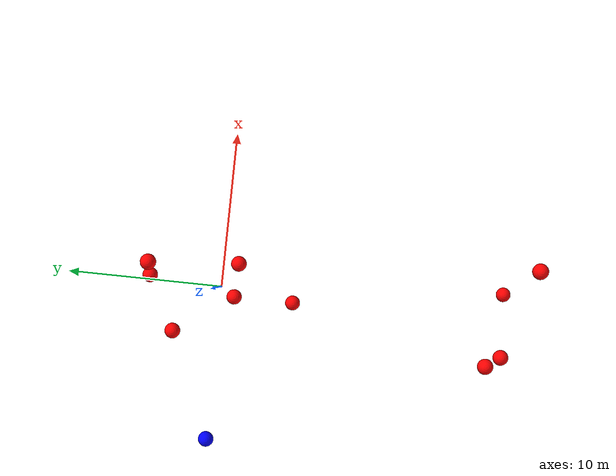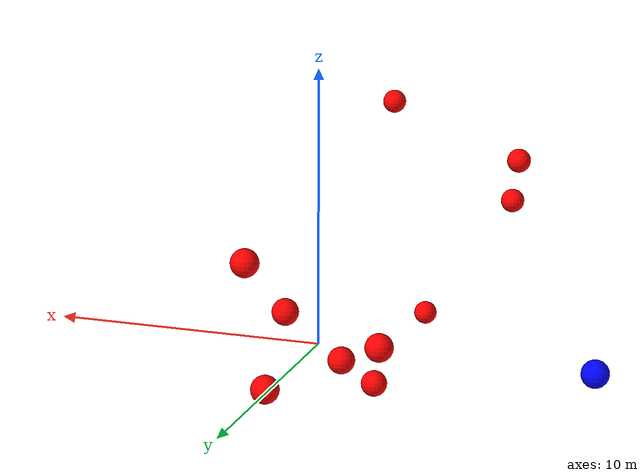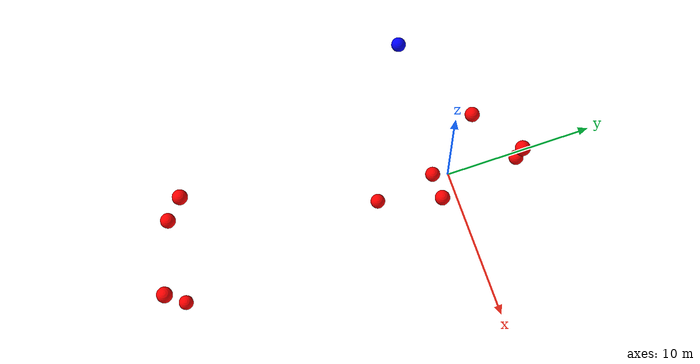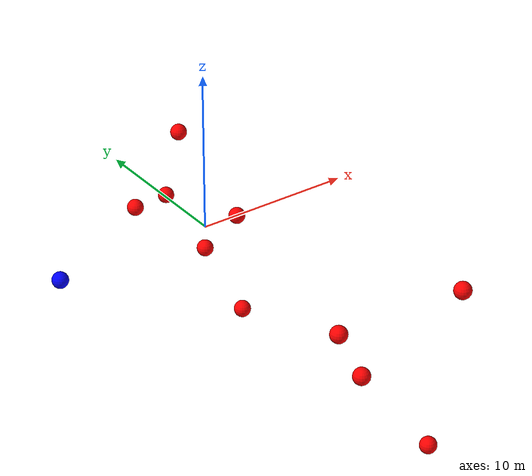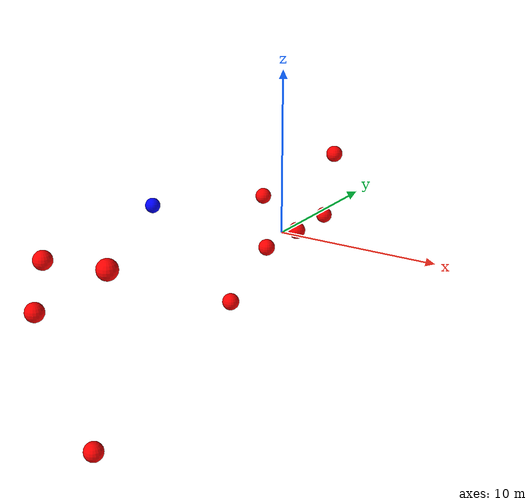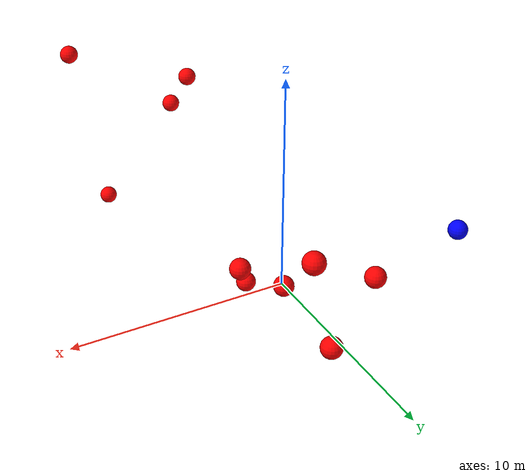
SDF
<?xml version="1.0" ?>
<sdf version="1.8">
    <world name="3d_world">
        <physics name="1ms" type="ode">
            <max_step_size>0.001</max_step_size>
            <real_time_factor>1.0</real_time_factor>
            <real_time_update_rate>1000.0</real_time_update_rate>
        </physics>
        <gravity>0 0 0</gravity>

        <plugin
            filename="gz-sim-physics-system"
            name="gz::sim::v8::systems::Physics">
        </plugin>
        <plugin
            filename="libignition-gazebo-user-commands-system.so"
            name="ignition::gazebo::systems::UserCommands">
        </plugin>
        <plugin
            filename="gz-sim-scene-broadcaster-system"
            name="gz::sim::systems::SceneBroadcaster">
        </plugin>
        <plugin
            filename="gz-sim-sensors-system"
            name="gz::sim::systems::Sensors">
            <render_engine>ogre2</render_engine>
        </plugin>

        <light type="directional" name="sun">
            <cast_shadows>true</cast_shadows>
            <pose>0 0 10 0 0 0</pose>
            <diffuse>0.8 0.8 0.8 1</diffuse>
            <specular>0.2 0.2 0.2 1</specular>
            <attenuation>
                <range>1000</range>
                <constant>0.9</constant>
                <linear>0.01</linear>
                <quadratic>0.001</quadratic>
            </attenuation>
            <direction>-0.5 0.1 -0.9</direction>
        </light>

        <!-- AGENTE -->
        <model name='agente' canonical_link='chassis'>
            <pose relative_to='world'>-10.0 0 0.0 0 0 0</pose>
            <link name='chassis'>
                <pose relative_to='__model__'>0.0 0 0.0 0 0 0</pose>
                <inertial>
                    <mass>1.14395</mass>
                    <inertia>
                        <ixx>0.095329</ixx>
                        <ixy>0</ixy>
                        <ixz>0</ixz>
                        <iyy>0.381317</iyy>
                        <iyz>0</iyz>
                        <izz>0.476646</izz>
                    </inertia>
                </inertial>
                <visual name='visual'>
                    <geometry>
                        <sphere>
                            <radius>0.5</radius>
                        </sphere>
                    </geometry>
                    <material>
                        <ambient>0.0 0.0 1.0 1</ambient>
                        <diffuse>0.0 0.0 1.0 1</diffuse>
                        <specular>0.0 0.0 1.0 1</specular>
                    </material>
                </visual>
                <collision name='collision'>
                    <geometry>
                        <sphere>
                            <radius>0.5</radius>
                        </sphere>
                    </geometry>
                </collision>
                <enable_gravity>false</enable_gravity>
            </link>

            <link name='lidar_link'>
                <pose relative_to='chassis'>0.0 0 0.1 0 0 0</pose>
                <inertial>
                    <mass>0.1</mass>
                    <inertia>
                        <ixx>0.000166667</ixx>
                        <iyy>0.000166667</iyy>
                        <izz>0.000166667</izz>
                    </inertia>
                </inertial>
                <collision name='collision'>
                    <geometry>
                        <cylinder>
                            <radius>0.05</radius>
                            <length>0.1</length>
                        </cylinder>
                    </geometry>
                </collision>
                <visual name='visual'>
                    <geometry>
                        <cylinder>
                            <radius>0.05</radius>
                            <length>0.1</length>
                        </cylinder>
                    </geometry>
                    <material>
                        <ambient>0.0 1.0 0.0 1</ambient>
                        <diffuse>0.0 1.0 0.0 1</diffuse>
                        <specular>0.0 1.0 0.0 1</specular>
                    </material>
                </visual>
                <sensor name="lidar" type="gpu_lidar">
                    <topic>scan</topic>
                    <update_rate>10</update_rate>
                    <lidar>
                        <scan>
                            <horizontal>
                                <samples>5000</samples>
                                <resolution>1</resolution>
                                <min_angle>-3.14159</min_angle>
                                <max_angle>3.14159</max_angle>
                            </horizontal>
                        </scan>
                        <range>
                            <min>0.1</min>
                            <max>10.0</max>
                            <resolution>0.01</resolution>
                        </range>
                    </lidar>
                    <visualize>true</visualize>
                    <always_on>true</always_on>
                    <update_rate>10</update_rate>
                    <pose_frame>lidar</pose_frame>
                </sensor>
                <enable_gravity>false</enable_gravity>
            </link>

            <joint name="lidar_joint" type="fixed">
                <parent>chassis</parent>
                <child>lidar_link</child>
            </joint>

            <plugin
                filename="ignition-gazebo-joint-state-publisher-system"
                name="ignition::gazebo::systems::JointStatePublisher">
            </plugin>
            <plugin
                filename="ignition-gazebo-odometry-publisher-system"
                name="ignition::gazebo::systems::OdometryPublisher">
                <dimensions>3</dimensions>
            </plugin>
            <plugin
                filename="ignition-gazebo-velocity-control-system"
                name="ignition::gazebo::systems::VelocityControl">
                <initial_linear>0.0 0 0</initial_linear>
                <initial_angular>0 0 0.0</initial_angular>
            </plugin>
            <plugin
                filename="libignition-gazebo-pose-publisher-system.so"
                name="ignition::gazebo::systems::PosePublisher">
                <topic>/agente/pose</topic>
                <frame_id>agente</frame_id>
                <update_rate>30</update_rate>
            </plugin>
        </model>

        <!-- OBSTACLE 1 -->
        <model name='obstacle_1' canonical_link='obstacle'>
            <static>false</static>
            <pose relative_to='world'>1.61 -1.00 0.74 0 0 0</pose>
            <link name='obstacle'>
                <pose relative_to='__model__'>0.0 0 0.0 0 0 0</pose>
                <visual name='visual'>
                    <geometry>
                        <sphere>
                            <radius>0.50</radius>
                        </sphere>
                    </geometry>
                    <material>
                        <ambient>1.0 0.0 0.0 1</ambient>
                        <diffuse>1.0 0.0 0.0 1</diffuse>
                        <specular>1.0 0.0 0.0 1</specular>
                    </material>
                </visual>
                <collision name='collision'>
                    <geometry>
                        <sphere>
                            <radius>0.50</radius>
                        </sphere>
                    </geometry>
                </collision>
                <enable_gravity>false</enable_gravity>
            </link>

            <plugin
                filename="ignition-gazebo-velocity-control-system"
                name="ignition::gazebo::systems::VelocityControl">
                <initial_linear>-0.19 0.23 -0.17</initial_linear>
                <initial_angular>0 0 0</initial_angular>
            </plugin>

            <plugin
                filename="ignition-gazebo-odometry-publisher-system"
                name="ignition::gazebo::systems::OdometryPublisher">
                <dimensions>3</dimensions>
            </plugin>
        </model>

        <!-- OBSTACLE 2 -->
        <model name='obstacle_2' canonical_link='obstacle'>
            <static>false</static>
            <pose relative_to='world'>3.02 -19.50 4.80 0 0 0</pose>
            <link name='obstacle'>
                <pose relative_to='__model__'>0.0 0 0.0 0 0 0</pose>
                <visual name='visual'>
                    <geometry>
                        <sphere>
                            <radius>0.50</radius>
                        </sphere>
                    </geometry>
                    <material>
                        <ambient>1.0 0.0 0.0 1</ambient>
                        <diffuse>1.0 0.0 0.0 1</diffuse>
                        <specular>1.0 0.0 0.0 1</specular>
                    </material>
                </visual>
                <collision name='collision'>
                    <geometry>
                        <sphere>
                            <radius>0.50</radius>
                        </sphere>
                    </geometry>
                </collision>
                <enable_gravity>false</enable_gravity>
            </link>

            <plugin
                filename="ignition-gazebo-velocity-control-system"
                name="ignition::gazebo::systems::VelocityControl">
                <initial_linear>-0.37 1.91 -0.47</initial_linear>
                <initial_angular>0 0 0</initial_angular>
            </plugin>

            <plugin
                filename="ignition-gazebo-odometry-publisher-system"
                name="ignition::gazebo::systems::OdometryPublisher">
                <dimensions>3</dimensions>
            </plugin>
        </model>

        <!-- OBSTACLE 3 -->
        <model name='obstacle_3' canonical_link='obstacle'>
            <static>false</static>
            <pose relative_to='world'>0.31 4.75 -0.16 0 0 0</pose>
            <link name='obstacle'>
                <pose relative_to='__model__'>0.0 0 0.0 0 0 0</pose>
                <visual name='visual'>
                    <geometry>
                        <sphere>
                            <radius>0.50</radius>
                        </sphere>
                    </geometry>
                    <material>
                        <ambient>1.0 0.0 0.0 1</ambient>
                        <diffuse>1.0 0.0 0.0 1</diffuse>
                        <specular>1.0 0.0 0.0 1</specular>
                    </material>
                </visual>
                <collision name='collision'>
                    <geometry>
                        <sphere>
                            <radius>0.50</radius>
                        </sphere>
                    </geometry>
                </collision>
                <enable_gravity>false</enable_gravity>
            </link>

            <plugin
                filename="ignition-gazebo-velocity-control-system"
                name="ignition::gazebo::systems::VelocityControl">
                <initial_linear>0.31 -1.01 0.03</initial_linear>
                <initial_angular>0 0 0</initial_angular>
            </plugin>

            <plugin
                filename="ignition-gazebo-odometry-publisher-system"
                name="ignition::gazebo::systems::OdometryPublisher">
                <dimensions>3</dimensions>
            </plugin>
        </model>

        <!-- OBSTACLE 4 -->
        <model name='obstacle_4' canonical_link='obstacle'>
            <static>false</static>
            <pose relative_to='world'>-3.11 2.80 1.08 0 0 0</pose>
            <link name='obstacle'>
                <pose relative_to='__model__'>0.0 0 0.0 0 0 0</pose>
                <visual name='visual'>
                    <geometry>
                        <sphere>
                            <radius>0.50</radius>
                        </sphere>
                    </geometry>
                    <material>
                        <ambient>1.0 0.0 0.0 1</ambient>
                        <diffuse>1.0 0.0 0.0 1</diffuse>
                        <specular>1.0 0.0 0.0 1</specular>
                    </material>
                </visual>
                <collision name='collision'>
                    <geometry>
                        <sphere>
                            <radius>0.50</radius>
                        </sphere>
                    </geometry>
                </collision>
                <enable_gravity>false</enable_gravity>
            </link>

            <plugin
                filename="ignition-gazebo-velocity-control-system"
                name="ignition::gazebo::systems::VelocityControl">
                <initial_linear>1.04 -0.59 -0.23</initial_linear>
                <initial_angular>0 0 0</initial_angular>
            </plugin>

            <plugin
                filename="ignition-gazebo-odometry-publisher-system"
                name="ignition::gazebo::systems::OdometryPublisher">
                <dimensions>3</dimensions>
            </plugin>
        </model>

        <!-- OBSTACLE 5 -->
        <model name='obstacle_5' canonical_link='obstacle'>
            <static>false</static>
            <pose relative_to='world'>-0.59 -0.84 -0.82 0 0 0</pose>
            <link name='obstacle'>
                <pose relative_to='__model__'>0.0 0 0.0 0 0 0</pose>
                <visual name='visual'>
                    <geometry>
                        <sphere>
                            <radius>0.50</radius>
                        </sphere>
                    </geometry>
                    <material>
                        <ambient>1.0 0.0 0.0 1</ambient>
                        <diffuse>1.0 0.0 0.0 1</diffuse>
                        <specular>1.0 0.0 0.0 1</specular>
                    </material>
                </visual>
                <collision name='collision'>
                    <geometry>
                        <sphere>
                            <radius>0.50</radius>
                        </sphere>
                    </geometry>
                </collision>
                <enable_gravity>false</enable_gravity>
            </link>

            <plugin
                filename="ignition-gazebo-velocity-control-system"
                name="ignition::gazebo::systems::VelocityControl">
                <initial_linear>0.45 0.18 0.18</initial_linear>
                <initial_angular>0 0 0</initial_angular>
            </plugin>

            <plugin
                filename="ignition-gazebo-odometry-publisher-system"
                name="ignition::gazebo::systems::OdometryPublisher">
                <dimensions>3</dimensions>
            </plugin>
        </model>

        <!-- OBSTACLE 6 -->
        <model name='obstacle_6' canonical_link='obstacle'>
            <static>false</static>
            <pose relative_to='world'>-2.66 -18.40 1.03 0 0 0</pose>
            <link name='obstacle'>
                <pose relative_to='__model__'>0.0 0 0.0 0 0 0</pose>
                <visual name='visual'>
                    <geometry>
                        <sphere>
                            <radius>0.50</radius>
                        </sphere>
                    </geometry>
                    <material>
                        <ambient>1.0 0.0 0.0 1</ambient>
                        <diffuse>1.0 0.0 0.0 1</diffuse>
                        <specular>1.0 0.0 0.0 1</specular>
                    </material>
                </visual>
                <collision name='collision'>
                    <geometry>
                        <sphere>
                            <radius>0.50</radius>
                        </sphere>
                    </geometry>
                </collision>
                <enable_gravity>false</enable_gravity>
            </link>

            <plugin
                filename="ignition-gazebo-velocity-control-system"
                name="ignition::gazebo::systems::VelocityControl">
                <initial_linear>0.41 1.95 -0.11</initial_linear>
                <initial_angular>0 0 0</initial_angular>
            </plugin>

            <plugin
                filename="ignition-gazebo-odometry-publisher-system"
                name="ignition::gazebo::systems::OdometryPublisher">
                <dimensions>3</dimensions>
            </plugin>
        </model>

        <!-- OBSTACLE 7 -->
        <model name='obstacle_7' canonical_link='obstacle'>
            <static>false</static>
            <pose relative_to='world'>1.42 -19.34 -4.73 0 0 0</pose>
            <link name='obstacle'>
                <pose relative_to='__model__'>0.0 0 0.0 0 0 0</pose>
                <visual name='visual'>
                    <geometry>
                        <sphere>
                            <radius>0.50</radius>
                        </sphere>
                    </geometry>
                    <material>
                        <ambient>1.0 0.0 0.0 1</ambient>
                        <diffuse>1.0 0.0 0.0 1</diffuse>
                        <specular>1.0 0.0 0.0 1</specular>
                    </material>
                </visual>
                <collision name='collision'>
                    <geometry>
                        <sphere>
                            <radius>0.50</radius>
                        </sphere>
                    </geometry>
                </collision>
                <enable_gravity>false</enable_gravity>
            </link>

            <plugin
                filename="ignition-gazebo-velocity-control-system"
                name="ignition::gazebo::systems::VelocityControl">
                <initial_linear>-0.59 1.86 0.45</initial_linear>
                <initial_angular>0 0 0</initial_angular>
            </plugin>

            <plugin
                filename="ignition-gazebo-odometry-publisher-system"
                name="ignition::gazebo::systems::OdometryPublisher">
                <dimensions>3</dimensions>
            </plugin>
        </model>

        <!-- OBSTACLE 8 -->
        <model name='obstacle_8' canonical_link='obstacle'>
            <static>false</static>
            <pose relative_to='world'>1.13 4.43 4.12 0 0 0</pose>
            <link name='obstacle'>
                <pose relative_to='__model__'>0.0 0 0.0 0 0 0</pose>
                <visual name='visual'>
                    <geometry>
                        <sphere>
                            <radius>0.50</radius>
                        </sphere>
                    </geometry>
                    <material>
                        <ambient>1.0 0.0 0.0 1</ambient>
                        <diffuse>1.0 0.0 0.0 1</diffuse>
                        <specular>1.0 0.0 0.0 1</specular>
                    </material>
                </visual>
                <collision name='collision'>
                    <geometry>
                        <sphere>
                            <radius>0.50</radius>
                        </sphere>
                    </geometry>
                </collision>
                <enable_gravity>false</enable_gravity>
            </link>

            <plugin
                filename="ignition-gazebo-velocity-control-system"
                name="ignition::gazebo::systems::VelocityControl">
                <initial_linear>-0.27 -1.10 -1.03</initial_linear>
                <initial_angular>0 0 0</initial_angular>
            </plugin>

            <plugin
                filename="ignition-gazebo-odometry-publisher-system"
                name="ignition::gazebo::systems::OdometryPublisher">
                <dimensions>3</dimensions>
            </plugin>
        </model>

        <!-- OBSTACLE 9 -->
        <model name='obstacle_9' canonical_link='obstacle'>
            <static>false</static>
            <pose relative_to='world'>-0.64 -4.75 -3.00 0 0 0</pose>
            <link name='obstacle'>
                <pose relative_to='__model__'>0.0 0 0.0 0 0 0</pose>
                <visual name='visual'>
                    <geometry>
                        <sphere>
                            <radius>0.50</radius>
                        </sphere>
                    </geometry>
                    <material>
                        <ambient>1.0 0.0 0.0 1</ambient>
                        <diffuse>1.0 0.0 0.0 1</diffuse>
                        <specular>1.0 0.0 0.0 1</specular>
                    </material>
                </visual>
                <collision name='collision'>
                    <geometry>
                        <sphere>
                            <radius>0.50</radius>
                        </sphere>
                    </geometry>
                </collision>
                <enable_gravity>false</enable_gravity>
            </link>

            <plugin
                filename="ignition-gazebo-velocity-control-system"
                name="ignition::gazebo::systems::VelocityControl">
                <initial_linear>-1.04 1.45 0.91</initial_linear>
                <initial_angular>0 0 0</initial_angular>
            </plugin>

            <plugin
                filename="ignition-gazebo-odometry-publisher-system"
                name="ignition::gazebo::systems::OdometryPublisher">
                <dimensions>3</dimensions>
            </plugin>
        </model>

        <!-- OBSTACLE 10 -->
        <model name='obstacle_10' canonical_link='obstacle'>
            <static>false</static>
            <pose relative_to='world'>-3.20 -17.07 3.14 0 0 0</pose>
            <link name='obstacle'>
                <pose relative_to='__model__'>0.0 0 0.0 0 0 0</pose>
                <visual name='visual'>
                    <geometry>
                        <sphere>
                            <radius>0.50</radius>
                        </sphere>
                    </geometry>
                    <material>
                        <ambient>1.0 0.0 0.0 1</ambient>
                        <diffuse>1.0 0.0 0.0 1</diffuse>
                        <specular>1.0 0.0 0.0 1</specular>
                    </material>
                </visual>
                <collision name='collision'>
                    <geometry>
                        <sphere>
                            <radius>0.50</radius>
                        </sphere>
                    </geometry>
                </collision>
                <enable_gravity>false</enable_gravity>
            </link>

            <plugin
                filename="ignition-gazebo-velocity-control-system"
                name="ignition::gazebo::systems::VelocityControl">
                <initial_linear>0.73 1.83 -0.34</initial_linear>
                <initial_angular>0 0 0</initial_angular>
            </plugin>

            <plugin
                filename="ignition-gazebo-odometry-publisher-system"
                name="ignition::gazebo::systems::OdometryPublisher">
                <dimensions>3</dimensions>
            </plugin>
        </model>

    </world>
</sdf>
